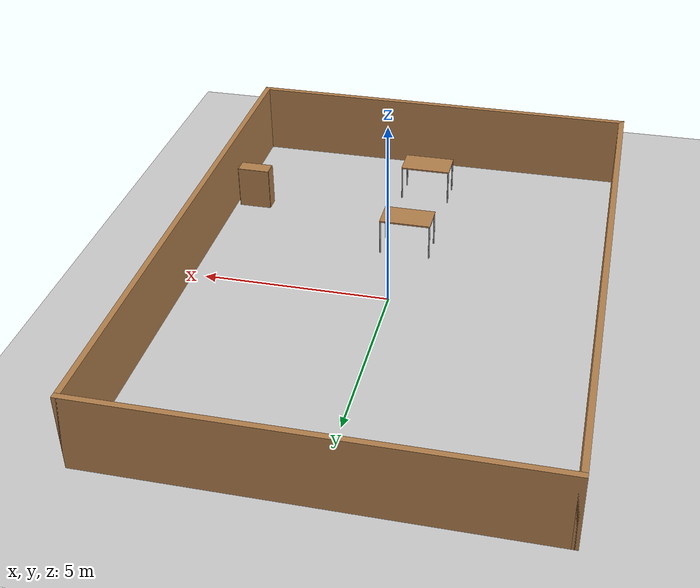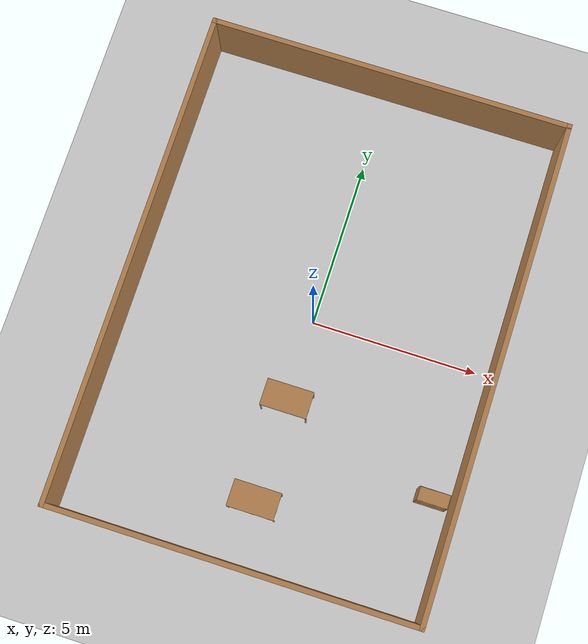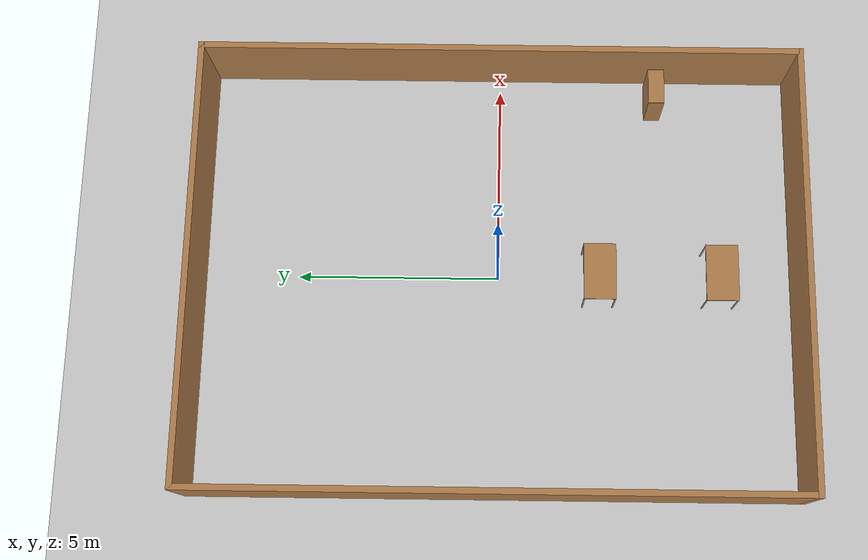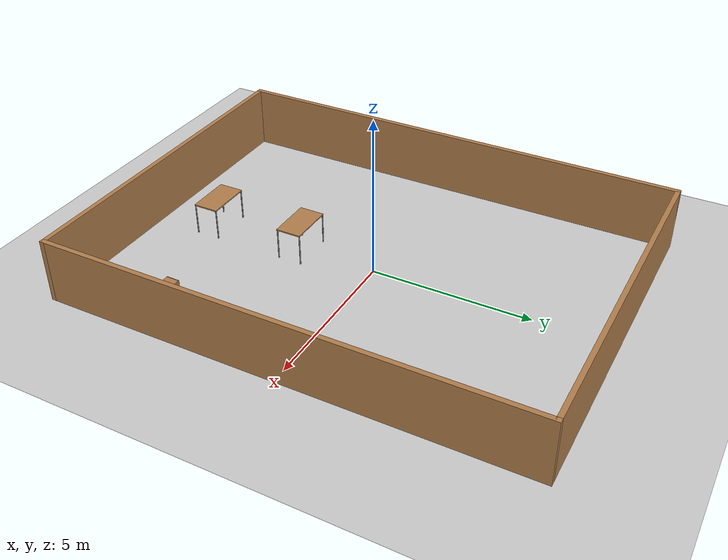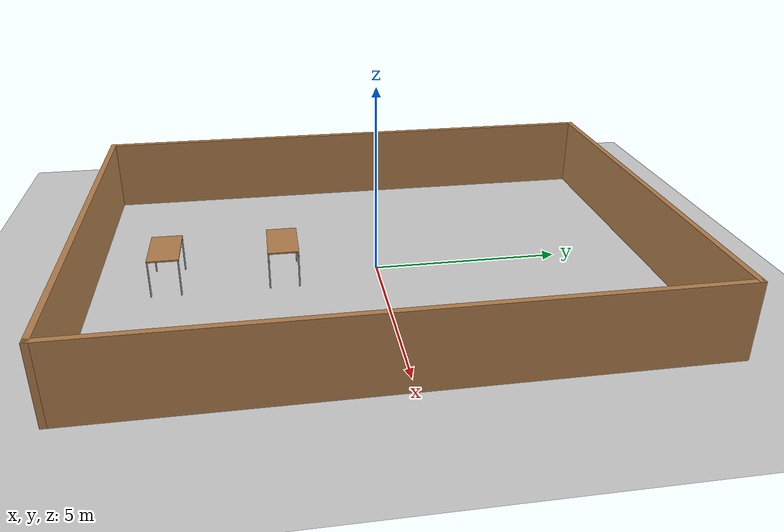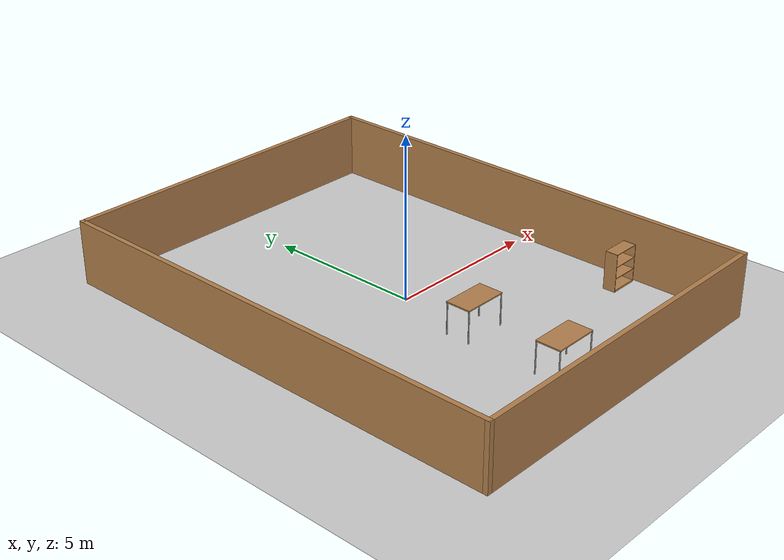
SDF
<sdf version="1.7">
 <world name="default">
  <light name="sun" type="directional">
   <pose>0 0 10 0 -0 0</pose>
   <diffuse>0.8 0.8 0.8 1</diffuse>
   <specular>0.1 0.1 0.1 1</specular>
   <attenuation>
    <range>1000</range>
    <constant>0.9</constant>
    <linear>0.01</linear>
    <quadratic>0.001</quadratic>
   </attenuation>
   <direction>-0.5 0.5 -1</direction>
   <spot><inner_angle>0</inner_angle><outer_angle>0</outer_angle><falloff>0</falloff></spot>
  </light>
  <model name="ground_plane">
   <static>1</static>
   <link name="link">
    <collision name="collision">
     <geometry><plane><normal>0 0 1</normal><size>100 100</size></plane></geometry>
     <surface><friction><ode><mu>100</mu><mu2>50</mu2></ode></friction></surface>
    </collision>
    <visual name="visual">
     <cast_shadows>0</cast_shadows>
     <geometry><plane><normal>0 0 1</normal><size>100 100</size></plane></geometry>
     <material>
      <script><uri>file://media/materials/scripts/gazebo.material</uri><name>Gazebo/Grey</name></script>
     </material>
    </visual>
   </link>
  </model>
  <gravity>0 0 -9.8</gravity>
  <magnetic_field>6e-06 2.3e-05 -4.2e-05</magnetic_field>
  <atmosphere type="adiabatic"/>
  <physics name="default_physics" default="0" type="ode">
   <max_step_size>0.001</max_step_size>
   <real_time_factor>1</real_time_factor>
   <real_time_update_rate>1000</real_time_update_rate>
  </physics>
  <scene><ambient>0.4 0.4 0.4 1</ambient><background>0.7 0.7 0.7 1</background><shadows>1</shadows></scene>
  <spherical_coordinates>
   <surface_model>EARTH_WGS84</surface_model>
   <latitude_deg>0</latitude_deg>
   <longitude_deg>0</longitude_deg>
   <elevation>0</elevation>
   <heading_deg>0</heading_deg>
  </spherical_coordinates>
  <model name="bookshelf">
   <static>1</static>
   <link name="link">
    <inertial><mass>1</mass></inertial>
    <collision name="back">
     <pose>0 0.005 0.6 0 -0 0</pose>
     <geometry><box><size>0.9 0.01 1.2</size></box></geometry>
    </collision>
    <visual name="visual1">
     <pose>0 0.005 0.6 0 -0 0</pose>
     <geometry><box><size>0.9 0.01 1.2</size></box></geometry>
     <material>
      <script><uri>file://media/materials/scripts/gazebo.material</uri><name>Gazebo/Wood</name></script>
     </material>
    </visual>
    <collision name="left_side">
     <pose>0.45 -0.195 0.6 0 -0 0</pose>
     <geometry><box><size>0.02 0.4 1.2</size></box></geometry>
    </collision>
    <visual name="visual2">
     <pose>0.45 -0.195 0.6 0 -0 0</pose>
     <geometry><box><size>0.02 0.4 1.2</size></box></geometry>
     <material>
      <script><uri>file://media/materials/scripts/gazebo.material</uri><name>Gazebo/Wood</name></script>
     </material>
    </visual>
    <collision name="right_side">
     <pose>-0.45 -0.195 0.6 0 -0 0</pose>
     <geometry><box><size>0.02 0.4 1.2</size></box></geometry>
    </collision>
    <visual name="visual3">
     <pose>-0.45 -0.195 0.6 0 -0 0</pose>
     <geometry><box><size>0.02 0.4 1.2</size></box></geometry>
     <material>
      <script><uri>file://media/materials/scripts/gazebo.material</uri><name>Gazebo/Wood</name></script>
     </material>
    </visual>
    <collision name="bottom">
     <pose>0 -0.195 0.03 0 -0 0</pose>
     <geometry><box><size>0.88 0.4 0.06</size></box></geometry>
    </collision>
    <visual name="visual4">
     <pose>0 -0.195 0.03 0 -0 0</pose>
     <geometry><box><size>0.88 0.4 0.06</size></box></geometry>
     <material>
      <script><uri>file://media/materials/scripts/gazebo.material</uri><name>Gazebo/Wood</name></script>
     </material>
    </visual>
    <collision name="top">
     <pose>0 -0.195 1.19 0 -0 0</pose>
     <geometry><box><size>0.88 0.4 0.02</size></box></geometry>
    </collision>
    <visual name="visual5">
     <pose>0 -0.195 1.19 0 -0 0</pose>
     <geometry><box><size>0.88 0.4 0.02</size></box></geometry>
     <material>
      <script><uri>file://media/materials/scripts/gazebo.material</uri><name>Gazebo/Wood</name></script>
     </material>
    </visual>
    <collision name="low_shelf">
     <pose>0 -0.195 0.43 0 -0 0</pose>
     <geometry><box><size>0.88 0.4 0.02</size></box></geometry>
    </collision>
    <visual name="visual6">
     <pose>0 -0.195 0.43 0 -0 0</pose>
     <geometry><box><size>0.88 0.4 0.02</size></box></geometry>
     <material>
      <script><uri>file://media/materials/scripts/gazebo.material</uri><name>Gazebo/Wood</name></script>
     </material>
    </visual>
    <collision name="high_shelf">
     <pose>0 -0.195 0.8 0 -0 0</pose>
     <geometry><box><size>0.88 0.4 0.02</size></box></geometry>
    </collision>
    <visual name="visual7">
     <pose>0 -0.195 0.8 0 -0 0</pose>
     <geometry><box><size>0.88 0.4 0.02</size></box></geometry>
     <material>
      <script><uri>file://media/materials/scripts/gazebo.material</uri><name>Gazebo/Wood</name></script>
     </material>
    </visual>
   </link>
   <pose>4.78412 -3.73836 0 0 -0 0</pose>
  </model>
  <model name="table">
   <static>1</static>
   <link name="link">
    <collision name="surface_table">
     <pose>0 0 1 0 -0 0</pose>
     <geometry><box><size>1.5 0.8 0.03</size></box></geometry>
     <surface><friction><ode><mu>0.6</mu><mu2>0.6</mu2></ode></friction></surface>
    </collision>
    <visual name="visual_table">
     <pose>0 0 1 0 -0 0</pose>
     <geometry><box><size>1.4 0.8 0.04</size></box></geometry>
     <material>
      <script><uri>file://media/materials/scripts/gazebo.material</uri><name>Gazebo/Wood</name></script>
     </material>
    </visual>
    <collision name="front_left_collision">
     <pose>0.68 0.38 0.5 0 -0 0</pose>
     <geometry><cylinder><radius>0.02</radius><length>1</length></cylinder></geometry>
    </collision>
    <visual name="front_left_leg">
     <pose>0.68 0.38 0.5 0 -0 0</pose>
     <geometry><cylinder><radius>0.02</radius><length>1</length></cylinder></geometry>
     <material>
      <script><uri>file://media/materials/scripts/gazebo.material</uri><name>Gazebo/Grey</name></script>
     </material>
    </visual>
    <collision name="front_right_collision">
     <pose>0.68 -0.38 0.5 0 -0 0</pose>
     <geometry><cylinder><radius>0.02</radius><length>1</length></cylinder></geometry>
    </collision>
    <visual name="front_right_leg">
     <pose>0.68 -0.38 0.5 0 -0 0</pose>
     <geometry><cylinder><radius>0.02</radius><length>1</length></cylinder></geometry>
     <material>
      <script><uri>file://media/materials/scripts/gazebo.material</uri><name>Gazebo/Grey</name></script>
     </material>
    </visual>
    <collision name="back_right_collision">
     <pose>-0.68 -0.38 0.5 0 -0 0</pose>
     <geometry><cylinder><radius>0.02</radius><length>1</length></cylinder></geometry>
    </collision>
    <visual name="back_right_leg">
     <pose>-0.68 -0.38 0.5 0 -0 0</pose>
     <geometry><cylinder><radius>0.02</radius><length>1</length></cylinder></geometry>
     <material>
      <script><uri>file://media/materials/scripts/gazebo.material</uri><name>Gazebo/Grey</name></script>
     </material>
    </visual>
    <collision name="back_left_collision">
     <pose>-0.68 0.38 0.5 0 -0 0</pose>
     <geometry><cylinder><radius>0.02</radius><length>1</length></cylinder></geometry>
    </collision>
    <visual name="back_left_leg">
     <pose>-0.68 0.38 0.5 0 -0 0</pose>
     <geometry><cylinder><radius>0.02</radius><length>1</length></cylinder></geometry>
     <material>
      <script><uri>file://media/materials/scripts/gazebo.material</uri><name>Gazebo/Grey</name></script>
     </material>
    </visual>
    <inertial>
     <inertia><ixx>1</ixx><ixy>0</ixy><ixz>0</ixz><iyy>1</iyy><iyz>0</iyz><izz>1</izz></inertia>
     <mass>1</mass>
    </inertial>
   </link>
   <pose>-0 -5.5 -2e-06 0 -0 0</pose>
  </model>
  <model name="table_0">
   <static>1</static>
   <link name="link">
    <collision name="surface_table">
     <pose>0 0 1 0 -0 0</pose>
     <geometry><box><size>1.5 0.8 0.03</size></box></geometry>
     <surface><friction><ode><mu>0.6</mu><mu2>0.6</mu2></ode></friction></surface>
    </collision>
    <visual name="visual_table">
     <pose>0 0 1 0 -0 0</pose>
     <geometry><box><size>1.4 0.8 0.04</size></box></geometry>
     <material>
      <script><uri>file://media/materials/scripts/gazebo.material</uri><name>Gazebo/Wood</name></script>
     </material>
    </visual>
    <collision name="front_left_collision">
     <pose>0.68 0.38 0.5 0 -0 0</pose>
     <geometry><cylinder><radius>0.02</radius><length>1</length></cylinder></geometry>
    </collision>
    <visual name="front_left_leg">
     <pose>0.68 0.38 0.5 0 -0 0</pose>
     <geometry><cylinder><radius>0.02</radius><length>1</length></cylinder></geometry>
     <material>
      <script><uri>file://media/materials/scripts/gazebo.material</uri><name>Gazebo/Grey</name></script>
     </material>
    </visual>
    <collision name="front_right_collision">
     <pose>0.68 -0.38 0.5 0 -0 0</pose>
     <geometry><cylinder><radius>0.02</radius><length>1</length></cylinder></geometry>
    </collision>
    <visual name="front_right_leg">
     <pose>0.68 -0.38 0.5 0 -0 0</pose>
     <geometry><cylinder><radius>0.02</radius><length>1</length></cylinder></geometry>
     <material>
      <script><uri>file://media/materials/scripts/gazebo.material</uri><name>Gazebo/Grey</name></script>
     </material>
    </visual>
    <collision name="back_right_collision">
     <pose>-0.68 -0.38 0.5 0 -0 0</pose>
     <geometry><cylinder><radius>0.02</radius><length>1</length></cylinder></geometry>
    </collision>
    <visual name="back_right_leg">
     <pose>-0.68 -0.38 0.5 0 -0 0</pose>
     <geometry><cylinder><radius>0.02</radius><length>1</length></cylinder></geometry>
     <material>
      <script><uri>file://media/materials/scripts/gazebo.material</uri><name>Gazebo/Grey</name></script>
     </material>
    </visual>
    <collision name="back_left_collision">
     <pose>-0.68 0.38 0.5 0 -0 0</pose>
     <geometry><cylinder><radius>0.02</radius><length>1</length></cylinder></geometry>
    </collision>
    <visual name="back_left_leg">
     <pose>-0.68 0.38 0.5 0 -0 0</pose>
     <geometry><cylinder><radius>0.02</radius><length>1</length></cylinder></geometry>
     <material>
      <script><uri>file://media/materials/scripts/gazebo.material</uri><name>Gazebo/Grey</name></script>
     </material>
    </visual>
    <inertial>
     <inertia><ixx>1</ixx><ixy>0</ixy><ixz>0</ixz><iyy>1</iyy><iyz>0</iyz><izz>1</izz></inertia>
     <mass>1</mass>
    </inertial>
   </link>
   <pose>-0 -2.5 -2e-06 0 -0 0</pose>
  </model>
  <include><name>box_try</name><uri>model://box_try</uri></include>
 </world>
</sdf>

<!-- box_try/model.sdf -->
<sdf version='1.7'>
  <model name='box_try'>
    <link name='Wall_6'>
      <pose>0 7.425 0 0 -0 0</pose>
      <self_collide>0</self_collide>
      <kinematic>0</kinematic>
      <gravity>1</gravity>
      <enable_wind>0</enable_wind>
      <inertial>
        <mass>1</mass>
        <pose>0 0 0 0 -0 0</pose>
        <inertia>
          <ixx>1</ixx>
          <ixy>0</ixy>
          <ixz>0</ixz>
          <iyy>1</iyy>
          <iyz>0</iyz>
          <izz>1</izz>
        </inertia>
      </inertial>
      <visual name='Wall_6_Visual'>
        <pose>0 0 1 0 -0 0</pose>
        <geometry>
          <box>
            <size>11 0.15 2</size>
          </box>
        </geometry>
        <material>
          <script>
            <uri>file://media/materials/scripts/gazebo.material</uri>
            <name>Gazebo/Wood</name>
          </script>
          <ambient>1 1 1 1</ambient>
          <diffuse>1 1 1 1</diffuse>
          <specular>0.2 0.2 0.2 1</specular>
          <emissive>0 0 0 1</emissive>
          <shader type='pixel'>
            <normal_map>__default__</normal_map>
          </shader>
        </material>
        <meta>
          <layer>0</layer>
        </meta>
        <cast_shadows>1</cast_shadows>
        <transparency>0</transparency>
      </visual>
      <collision name='Wall_6_Collision'>
        <laser_retro>0</laser_retro>
        <max_contacts>10</max_contacts>
        <pose>0 0 1 0 -0 0</pose>
        <geometry>
          <box>
            <size>11 0.15 2</size>
          </box>
        </geometry>
        <surface>
          <friction>
            <ode>
              <mu>1</mu>
              <mu2>1</mu2>
              <fdir1>0 0 0</fdir1>
              <slip1>0</slip1>
              <slip2>0</slip2>
            </ode>
            <torsional>
              <coefficient>1</coefficient>
              <patch_radius>0</patch_radius>
              <surface_radius>0</surface_radius>
              <use_patch_radius>1</use_patch_radius>
              <ode>
                <slip>0</slip>
              </ode>
            </torsional>
          </friction>
          <bounce>
            <restitution_coefficient>0</restitution_coefficient>
            <threshold>1e+06</threshold>
          </bounce>
          <contact>
            <collide_without_contact>0</collide_without_contact>
            <collide_without_contact_bitmask>1</collide_without_contact_bitmask>
            <collide_bitmask>1</collide_bitmask>
            <ode>
              <soft_cfm>0</soft_cfm>
              <soft_erp>0.2</soft_erp>
              <kp>1e+13</kp>
              <kd>1</kd>
              <max_vel>0.01</max_vel>
              <min_depth>0</min_depth>
            </ode>
            <bullet>
              <split_impulse>1</split_impulse>
              <split_impulse_penetration_threshold>-0.01</split_impulse_penetration_threshold>
              <soft_cfm>0</soft_cfm>
              <soft_erp>0.2</soft_erp>
              <kp>1e+13</kp>
              <kd>1</kd>
            </bullet>
          </contact>
        </surface>
      </collision>
    </link>
    <link name='Wall_7'>
      <pose>5.425 0 0 0 0 -1.5708</pose>
      <self_collide>0</self_collide>
      <kinematic>0</kinematic>
      <gravity>1</gravity>
      <enable_wind>0</enable_wind>
      <inertial>
        <mass>1</mass>
        <pose>0 0 0 0 -0 0</pose>
        <inertia>
          <ixx>1</ixx>
          <ixy>0</ixy>
          <ixz>0</ixz>
          <iyy>1</iyy>
          <iyz>0</iyz>
          <izz>1</izz>
        </inertia>
      </inertial>
      <visual name='Wall_7_Visual'>
        <pose>0 0 1 0 -0 0</pose>
        <geometry>
          <box>
            <size>15 0.15 2</size>
          </box>
        </geometry>
        <material>
          <script>
            <uri>file://media/materials/scripts/gazebo.material</uri>
            <name>Gazebo/Wood</name>
          </script>
          <ambient>1 1 1 1</ambient>
          <diffuse>1 1 1 1</diffuse>
          <specular>0.2 0.2 0.2 1</specular>
          <emissive>0 0 0 1</emissive>
          <shader type='pixel'>
            <normal_map>__default__</normal_map>
          </shader>
        </material>
        <meta>
          <layer>0</layer>
        </meta>
        <cast_shadows>1</cast_shadows>
        <transparency>0</transparency>
      </visual>
      <collision name='Wall_7_Collision'>
        <laser_retro>0</laser_retro>
        <max_contacts>10</max_contacts>
        <pose>0 0 1 0 -0 0</pose>
        <geometry>
          <box>
            <size>15 0.15 2</size>
          </box>
        </geometry>
        <surface>
          <friction>
            <ode>
              <mu>1</mu>
              <mu2>1</mu2>
              <fdir1>0 0 0</fdir1>
              <slip1>0</slip1>
              <slip2>0</slip2>
            </ode>
            <torsional>
              <coefficient>1</coefficient>
              <patch_radius>0</patch_radius>
              <surface_radius>0</surface_radius>
              <use_patch_radius>1</use_patch_radius>
              <ode>
                <slip>0</slip>
              </ode>
            </torsional>
          </friction>
          <bounce>
            <restitution_coefficient>0</restitution_coefficient>
            <threshold>1e+06</threshold>
          </bounce>
          <contact>
            <collide_without_contact>0</collide_without_contact>
            <collide_without_contact_bitmask>1</collide_without_contact_bitmask>
            <collide_bitmask>1</collide_bitmask>
            <ode>
              <soft_cfm>0</soft_cfm>
              <soft_erp>0.2</soft_erp>
              <kp>1e+13</kp>
              <kd>1</kd>
              <max_vel>0.01</max_vel>
              <min_depth>0</min_depth>
            </ode>
            <bullet>
              <split_impulse>1</split_impulse>
              <split_impulse_penetration_threshold>-0.01</split_impulse_penetration_threshold>
              <soft_cfm>0</soft_cfm>
              <soft_erp>0.2</soft_erp>
              <kp>1e+13</kp>
              <kd>1</kd>
            </bullet>
          </contact>
        </surface>
      </collision>
    </link>
    <link name='Wall_8'>
      <pose>0 -7.425 0 0 -0 3.14159</pose>
      <self_collide>0</self_collide>
      <kinematic>0</kinematic>
      <gravity>1</gravity>
      <enable_wind>0</enable_wind>
      <inertial>
        <mass>1</mass>
        <pose>0 0 0 0 -0 0</pose>
        <inertia>
          <ixx>1</ixx>
          <ixy>0</ixy>
          <ixz>0</ixz>
          <iyy>1</iyy>
          <iyz>0</iyz>
          <izz>1</izz>
        </inertia>
      </inertial>
      <visual name='Wall_8_Visual'>
        <pose>0 0 1 0 -0 0</pose>
        <geometry>
          <box>
            <size>11 0.15 2</size>
          </box>
        </geometry>
        <material>
          <script>
            <uri>file://media/materials/scripts/gazebo.material</uri>
            <name>Gazebo/Wood</name>
          </script>
          <ambient>1 1 1 1</ambient>
          <diffuse>1 1 1 1</diffuse>
          <specular>0.2 0.2 0.2 1</specular>
          <emissive>0 0 0 1</emissive>
          <shader type='pixel'>
            <normal_map>__default__</normal_map>
          </shader>
        </material>
        <meta>
          <layer>0</layer>
        </meta>
        <cast_shadows>1</cast_shadows>
        <transparency>0</transparency>
      </visual>
      <collision name='Wall_8_Collision'>
        <laser_retro>0</laser_retro>
        <max_contacts>10</max_contacts>
        <pose>0 0 1 0 -0 0</pose>
        <geometry>
          <box>
            <size>11 0.15 2</size>
          </box>
        </geometry>
        <surface>
          <friction>
            <ode>
              <mu>1</mu>
              <mu2>1</mu2>
              <fdir1>0 0 0</fdir1>
              <slip1>0</slip1>
              <slip2>0</slip2>
            </ode>
            <torsional>
              <coefficient>1</coefficient>
              <patch_radius>0</patch_radius>
              <surface_radius>0</surface_radius>
              <use_patch_radius>1</use_patch_radius>
              <ode>
                <slip>0</slip>
              </ode>
            </torsional>
          </friction>
          <bounce>
            <restitution_coefficient>0</restitution_coefficient>
            <threshold>1e+06</threshold>
          </bounce>
          <contact>
            <collide_without_contact>0</collide_without_contact>
            <collide_without_contact_bitmask>1</collide_without_contact_bitmask>
            <collide_bitmask>1</collide_bitmask>
            <ode>
              <soft_cfm>0</soft_cfm>
              <soft_erp>0.2</soft_erp>
              <kp>1e+13</kp>
              <kd>1</kd>
              <max_vel>0.01</max_vel>
              <min_depth>0</min_depth>
            </ode>
            <bullet>
              <split_impulse>1</split_impulse>
              <split_impulse_penetration_threshold>-0.01</split_impulse_penetration_threshold>
              <soft_cfm>0</soft_cfm>
              <soft_erp>0.2</soft_erp>
              <kp>1e+13</kp>
              <kd>1</kd>
            </bullet>
          </contact>
        </surface>
      </collision>
    </link>
    <link name='Wall_9'>
      <pose>-5.425 0 0 0 -0 1.5708</pose>
      <self_collide>0</self_collide>
      <kinematic>0</kinematic>
      <gravity>1</gravity>
      <enable_wind>0</enable_wind>
      <inertial>
        <mass>1</mass>
        <pose>0 0 0 0 -0 0</pose>
        <inertia>
          <ixx>1</ixx>
          <ixy>0</ixy>
          <ixz>0</ixz>
          <iyy>1</iyy>
          <iyz>0</iyz>
          <izz>1</izz>
        </inertia>
      </inertial>
      <visual name='Wall_9_Visual'>
        <pose>0 0 1 0 -0 0</pose>
        <geometry>
          <box>
            <size>15 0.15 2</size>
          </box>
        </geometry>
        <material>
          <script>
            <uri>file://media/materials/scripts/gazebo.material</uri>
            <name>Gazebo/Wood</name>
          </script>
          <ambient>1 1 1 1</ambient>
          <diffuse>1 1 1 1</diffuse>
          <specular>0.2 0.2 0.2 1</specular>
          <emissive>0 0 0 1</emissive>
          <shader type='pixel'>
            <normal_map>__default__</normal_map>
          </shader>
        </material>
        <meta>
          <layer>0</layer>
        </meta>
        <cast_shadows>1</cast_shadows>
        <transparency>0</transparency>
      </visual>
      <collision name='Wall_9_Collision'>
        <laser_retro>0</laser_retro>
        <max_contacts>10</max_contacts>
        <pose>0 0 1 0 -0 0</pose>
        <geometry>
          <box>
            <size>15 0.15 2</size>
          </box>
        </geometry>
        <surface>
          <friction>
            <ode>
              <mu>1</mu>
              <mu2>1</mu2>
              <fdir1>0 0 0</fdir1>
              <slip1>0</slip1>
              <slip2>0</slip2>
            </ode>
            <torsional>
              <coefficient>1</coefficient>
              <patch_radius>0</patch_radius>
              <surface_radius>0</surface_radius>
              <use_patch_radius>1</use_patch_radius>
              <ode>
                <slip>0</slip>
              </ode>
            </torsional>
          </friction>
          <bounce>
            <restitution_coefficient>0</restitution_coefficient>
            <threshold>1e+06</threshold>
          </bounce>
          <contact>
            <collide_without_contact>0</collide_without_contact>
            <collide_without_contact_bitmask>1</collide_without_contact_bitmask>
            <collide_bitmask>1</collide_bitmask>
            <ode>
              <soft_cfm>0</soft_cfm>
              <soft_erp>0.2</soft_erp>
              <kp>1e+13</kp>
              <kd>1</kd>
              <max_vel>0.01</max_vel>
              <min_depth>0</min_depth>
            </ode>
            <bullet>
              <split_impulse>1</split_impulse>
              <split_impulse_penetration_threshold>-0.01</split_impulse_penetration_threshold>
              <soft_cfm>0</soft_cfm>
              <soft_erp>0.2</soft_erp>
              <kp>1e+13</kp>
              <kd>1</kd>
            </bullet>
          </contact>
        </surface>
      </collision>
    </link>
    <static>1</static>
    <allow_auto_disable>1</allow_auto_disable>
  </model>
</sdf>
